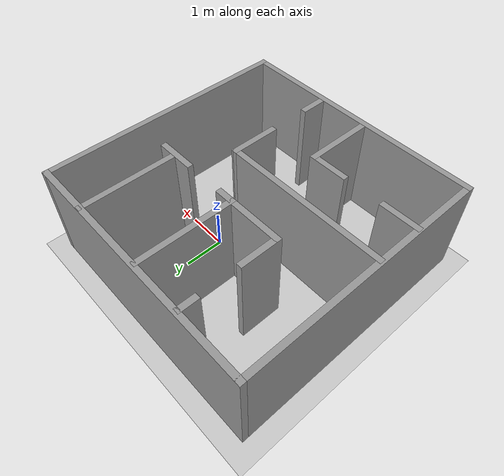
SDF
<sdf version="1.7">
 <world name="default">
  <light name="sun" type="directional">
   <pose>0 0 10 0 -0 0</pose>
   <diffuse>0.8 0.8 0.8 1</diffuse>
   <specular>0.2 0.2 0.2 1</specular>
   <attenuation>
    <range>1000</range>
    <constant>0.9</constant>
    <linear>0.01</linear>
    <quadratic>0.001</quadratic>
   </attenuation>
   <direction>-0.5 0.1 -0.9</direction>
   <spot><inner_angle>0</inner_angle><outer_angle>0</outer_angle><falloff>0</falloff></spot>
  </light>
  <model name="ground_plane">
   <static>1</static>
   <link name="link">
    <collision name="collision">
     <geometry><plane><normal>0 0 1</normal><size>100 100</size></plane></geometry>
     <surface>
      <contact><collide_bitmask>65535</collide_bitmask></contact>
      <friction><ode><mu>100</mu><mu2>50</mu2></ode></friction>
     </surface>
    </collision>
    <visual name="visual">
     <cast_shadows>0</cast_shadows>
     <geometry><plane><normal>0 0 1</normal><size>100 100</size></plane></geometry>
     <material>
      <script><uri>file://media/materials/scripts/gazebo.material</uri><name>Gazebo/Grey</name></script>
     </material>
    </visual>
   </link>
  </model>
  <gravity>0 0 -9.8</gravity>
  <magnetic_field>6e-06 2.3e-05 -4.2e-05</magnetic_field>
  <atmosphere type="adiabatic"/>
  <physics type="ode">
   <max_step_size>0.001</max_step_size>
   <real_time_factor>1</real_time_factor>
   <real_time_update_rate>1000</real_time_update_rate>
  </physics>
  <scene><ambient>0.4 0.4 0.4 1</ambient><background>0.7 0.7 0.7 1</background><shadows>1</shadows></scene>
  <spherical_coordinates>
   <surface_model>EARTH_WGS84</surface_model>
   <latitude_deg>0</latitude_deg>
   <longitude_deg>0</longitude_deg>
   <elevation>0</elevation>
   <heading_deg>0</heading_deg>
  </spherical_coordinates>
  <model name="mazetest">
   <pose>-0.807256 -0.445187 0 0 -0 0</pose>
   <link name="Wall_0">
    <collision name="Wall_0_Collision">
     <geometry><box><size>6.5 0.15 2.5</size></box></geometry>
     <pose>0 0 1.25 0 -0 0</pose>
    </collision>
    <visual name="Wall_0_Visual">
     <pose>0 0 1.25 0 -0 0</pose>
     <geometry><box><size>6.5 0.15 2.5</size></box></geometry>
     <material>
      <script><uri>file://media/materials/scripts/gazebo.material</uri><name>Gazebo/Grey</name></script>
      <ambient>1 1 1 1</ambient>
     </material>
     <meta><layer>0</layer></meta>
    </visual>
    <pose>0 -3.175 0 0 -0 0</pose>
   </link>
   <link name="Wall_2">
    <collision name="Wall_2_Collision">
     <geometry><box><size>6.5 0.15 2.5</size></box></geometry>
     <pose>0 0 1.25 0 -0 0</pose>
    </collision>
    <visual name="Wall_2_Visual">
     <pose>0 0 1.25 0 -0 0</pose>
     <geometry><box><size>6.5 0.15 2.5</size></box></geometry>
     <material>
      <script><uri>file://media/materials/scripts/gazebo.material</uri><name>Gazebo/Grey</name></script>
      <ambient>1 1 1 1</ambient>
     </material>
     <meta><layer>0</layer></meta>
    </visual>
    <pose>3.175 0 0 0 -0 1.5708</pose>
   </link>
   <link name="Wall_20">
    <collision name="Wall_20_Collision">
     <geometry><box><size>1.5 0.15 2.5</size></box></geometry>
     <pose>0 0 1.25 0 -0 0</pose>
    </collision>
    <visual name="Wall_20_Visual">
     <pose>0 0 1.25 0 -0 0</pose>
     <geometry><box><size>1.5 0.15 2.5</size></box></geometry>
     <material>
      <script><uri>file://media/materials/scripts/gazebo.material</uri><name>Gazebo/Grey</name></script>
      <ambient>1 1 1 1</ambient>
     </material>
     <meta><layer>0</layer></meta>
    </visual>
    <pose>-0.7979 0.756814 0 0 -0 0</pose>
   </link>
   <link name="Wall_21">
    <collision name="Wall_21_Collision">
     <geometry><box><size>2.5 0.15 2.5</size></box></geometry>
     <pose>0 0 1.25 0 -0 0</pose>
    </collision>
    <visual name="Wall_21_Visual">
     <pose>0 0 1.25 0 -0 0</pose>
     <geometry><box><size>2.5 0.15 2.5</size></box></geometry>
     <material>
      <script><uri>file://media/materials/scripts/gazebo.material</uri><name>Gazebo/Grey</name></script>
      <ambient>1 1 1 1</ambient>
     </material>
     <meta><layer>0</layer></meta>
    </visual>
    <pose>-0.1229 1.93181 0 0 -0 1.5708</pose>
   </link>
   <link name="Wall_23">
    <collision name="Wall_23_Collision">
     <geometry><box><size>0.5 0.15 2.5</size></box></geometry>
     <pose>0 0 1.25 0 -0 0</pose>
    </collision>
    <visual name="Wall_23_Visual">
     <pose>0 0 1.25 0 -0 0</pose>
     <geometry><box><size>0.5 0.15 2.5</size></box></geometry>
     <material>
      <script><uri>file://media/materials/scripts/gazebo.material</uri><name>Gazebo/Grey</name></script>
      <ambient>1 1 1 1</ambient>
     </material>
     <meta><layer>0</layer></meta>
    </visual>
    <pose>0.0521 0.756814 0 0 -0 0</pose>
   </link>
   <link name="Wall_26">
    <collision name="Wall_26_Collision">
     <geometry><box><size>1 0.15 2.5</size></box></geometry>
     <pose>0 0 1.25 0 -0 0</pose>
    </collision>
    <visual name="Wall_26_Visual">
     <pose>0 0 1.25 0 -0 0</pose>
     <geometry><box><size>1 0.15 2.5</size></box></geometry>
     <material>
      <script><uri>file://media/materials/scripts/gazebo.material</uri><name>Gazebo/Grey</name></script>
      <ambient>1 1 1 1</ambient>
     </material>
     <meta><layer>0</layer></meta>
    </visual>
    <pose>1.7521 0.756814 0 0 -0 0</pose>
   </link>
   <link name="Wall_28">
    <collision name="Wall_28_Collision">
     <geometry><box><size>2.5 0.15 2.5</size></box></geometry>
     <pose>0 0 1.25 0 -0 0</pose>
    </collision>
    <visual name="Wall_28_Visual">
     <pose>0 0 1.25 0 -0 0</pose>
     <geometry><box><size>2.5 0.15 2.5</size></box></geometry>
     <material>
      <script><uri>file://media/materials/scripts/gazebo.material</uri><name>Gazebo/Grey</name></script>
      <ambient>1 1 1 1</ambient>
     </material>
     <meta><layer>0</layer></meta>
    </visual>
    <pose>1.79249 1.98589 0 0 -0 1.5708</pose>
   </link>
   <link name="Wall_3">
    <collision name="Wall_3_Collision">
     <geometry><box><size>6.5 0.15 2.5</size></box></geometry>
     <pose>0 0 1.25 0 -0 0</pose>
    </collision>
    <visual name="Wall_3_Visual">
     <pose>0 0 1.25 0 -0 0</pose>
     <geometry><box><size>6.5 0.15 2.5</size></box></geometry>
     <material>
      <script><uri>file://media/materials/scripts/gazebo.material</uri><name>Gazebo/Grey</name></script>
      <ambient>1 1 1 1</ambient>
     </material>
     <meta><layer>0</layer></meta>
    </visual>
    <pose>0 3.175 0 0 -0 3.14159</pose>
   </link>
   <link name="Wall_31">
    <collision name="Wall_31_Collision">
     <geometry><box><size>1 0.15 2.5</size></box></geometry>
     <pose>0 0 1.25 0 -0 0</pose>
    </collision>
    <visual name="Wall_31_Visual">
     <pose>0 0 1.25 0 -0 0</pose>
     <geometry><box><size>1 0.15 2.5</size></box></geometry>
     <material>
      <script><uri>file://media/materials/scripts/gazebo.material</uri><name>Gazebo/Grey</name></script>
      <ambient>1 1 1 1</ambient>
     </material>
     <meta><layer>0</layer></meta>
    </visual>
    <pose>-2.71808 -1.47744 0 0 -0 0</pose>
   </link>
   <link name="Wall_33">
    <collision name="Wall_33_Collision">
     <geometry><box><size>1 0.15 2.5</size></box></geometry>
     <pose>0 0 1.25 0 -0 0</pose>
    </collision>
    <visual name="Wall_33_Visual">
     <pose>0 0 1.25 0 -0 0</pose>
     <geometry><box><size>1 0.15 2.5</size></box></geometry>
     <material>
      <script><uri>file://media/materials/scripts/gazebo.material</uri><name>Gazebo/Grey</name></script>
      <ambient>1 1 1 1</ambient>
     </material>
     <meta><layer>0</layer></meta>
    </visual>
    <pose>-0.768084 -1.47744 0 0 -0 0</pose>
   </link>
   <link name="Wall_34">
    <collision name="Wall_34_Collision">
     <geometry><box><size>1.75 0.15 2.5</size></box></geometry>
     <pose>0 0 1.25 0 -0 0</pose>
    </collision>
    <visual name="Wall_34_Visual">
     <pose>0 0 1.25 0 -0 0</pose>
     <geometry><box><size>1.75 0.15 2.5</size></box></geometry>
     <material>
      <script><uri>file://media/materials/scripts/gazebo.material</uri><name>Gazebo/Grey</name></script>
      <ambient>1 1 1 1</ambient>
     </material>
     <meta><layer>0</layer></meta>
    </visual>
    <pose>-0.343084 -2.27745 0 0 -0 -1.5708</pose>
   </link>
   <link name="Wall_37">
    <collision name="Wall_37_Collision">
     <geometry><box><size>4.25 0.15 2.5</size></box></geometry>
     <pose>0 0 1.25 0 -0 0</pose>
    </collision>
    <visual name="Wall_37_Visual">
     <pose>0 0 1.25 0 -0 0</pose>
     <geometry><box><size>4.25 0.15 2.5</size></box></geometry>
     <material>
      <script><uri>file://media/materials/scripts/gazebo.material</uri><name>Gazebo/Grey</name></script>
      <ambient>1 1 1 1</ambient>
     </material>
     <meta><layer>0</layer></meta>
    </visual>
    <pose>-1.07559 -0.323101 0 0 -0 0</pose>
   </link>
   <link name="Wall_38">
    <collision name="Wall_38_Collision">
     <geometry><box><size>1.25 0.15 2.5</size></box></geometry>
     <pose>0 0 1.25 0 -0 0</pose>
    </collision>
    <visual name="Wall_38_Visual">
     <pose>0 0 1.25 0 -0 0</pose>
     <geometry><box><size>1.25 0.15 2.5</size></box></geometry>
     <material>
      <script><uri>file://media/materials/scripts/gazebo.material</uri><name>Gazebo/Grey</name></script>
      <ambient>1 1 1 1</ambient>
     </material>
     <meta><layer>0</layer></meta>
    </visual>
    <pose>0.974407 -0.873101 0 0 -0 -1.5708</pose>
   </link>
   <link name="Wall_4">
    <collision name="Wall_4_Collision">
     <geometry><box><size>6.5 0.15 2.5</size></box></geometry>
     <pose>0 0 1.25 0 -0 0</pose>
    </collision>
    <visual name="Wall_4_Visual">
     <pose>0 0 1.25 0 -0 0</pose>
     <geometry><box><size>6.5 0.15 2.5</size></box></geometry>
     <material>
      <script><uri>file://media/materials/scripts/gazebo.material</uri><name>Gazebo/Grey</name></script>
      <ambient>1 1 1 1</ambient>
     </material>
     <meta><layer>0</layer></meta>
    </visual>
    <pose>-3.175 0 0 0 -0 -1.5708</pose>
   </link>
   <link name="Wall_40">
    <collision name="Wall_40_Collision">
     <geometry><box><size>0.75 0.15 2.5</size></box></geometry>
     <pose>0 0 1.25 0 -0 0</pose>
    </collision>
    <visual name="Wall_40_Visual">
     <pose>0 0 1.25 0 -0 0</pose>
     <geometry><box><size>0.75 0.15 2.5</size></box></geometry>
     <material>
      <script><uri>file://media/materials/scripts/gazebo.material</uri><name>Gazebo/Grey</name></script>
      <ambient>1 1 1 1</ambient>
     </material>
     <meta><layer>0</layer></meta>
    </visual>
    <pose>0.974407 -2.8231 0 0 -0 -1.5708</pose>
   </link>
   <link name="Wall_6">
    <collision name="Wall_6_Collision">
     <geometry><box><size>0.5 0.15 2.5</size></box></geometry>
     <pose>0 0 1.25 0 -0 0</pose>
    </collision>
    <visual name="Wall_6_Visual">
     <pose>0 0 1.25 0 -0 0</pose>
     <geometry><box><size>0.5 0.15 2.5</size></box></geometry>
     <material>
      <script><uri>file://media/materials/scripts/gazebo.material</uri><name>Gazebo/Grey</name></script>
      <ambient>1 1 1 1</ambient>
     </material>
     <meta><layer>0</layer></meta>
    </visual>
    <pose>-1.4729 2.93177 0 0 -0 -1.5708</pose>
   </link>
   <link name="Wall_8">
    <collision name="Wall_8_Collision">
     <geometry><box><size>1.04996 0.15 2.5</size></box></geometry>
     <pose>0 0 1.25 0 -0 0</pose>
    </collision>
    <visual name="Wall_8_Visual">
     <pose>0 0 1.25 0 -0 0</pose>
     <geometry><box><size>1.04996 0.15 2.5</size></box></geometry>
     <material>
      <script><uri>file://media/materials/scripts/gazebo.material</uri><name>Gazebo/Grey</name></script>
      <ambient>1 1 1 1</ambient>
     </material>
     <meta><layer>0</layer></meta>
    </visual>
    <pose>-1.4729 1.20679 0 0 -0 -1.5708</pose>
   </link>
   <static>1</static>
  </model>
 </world>
</sdf>
